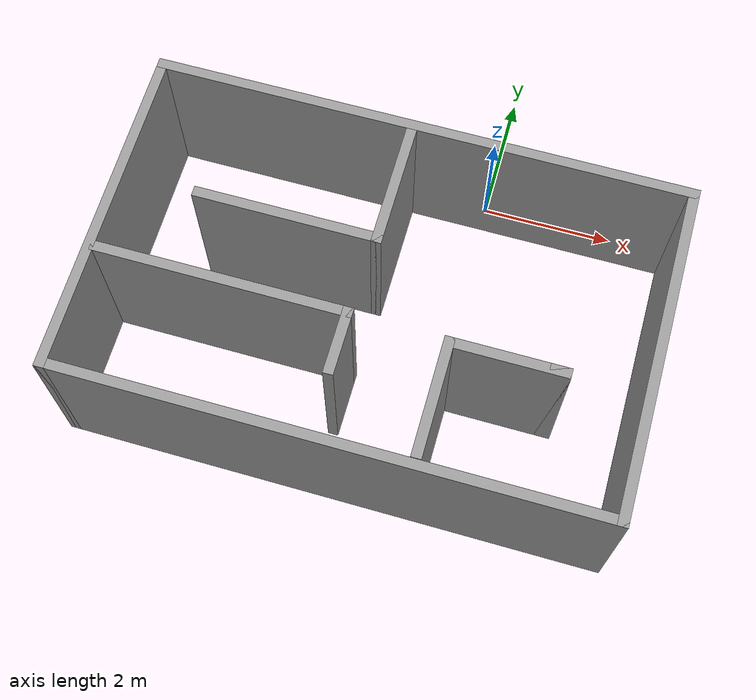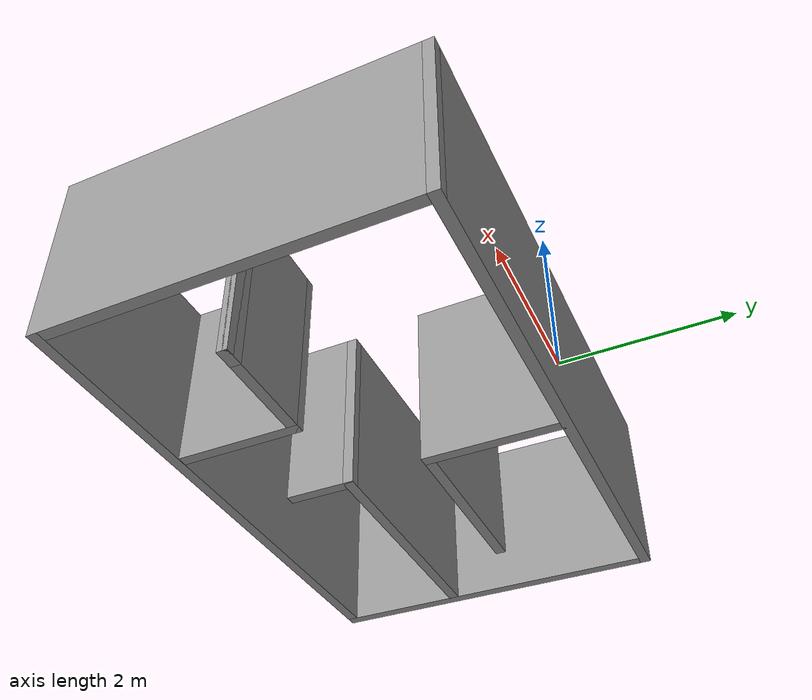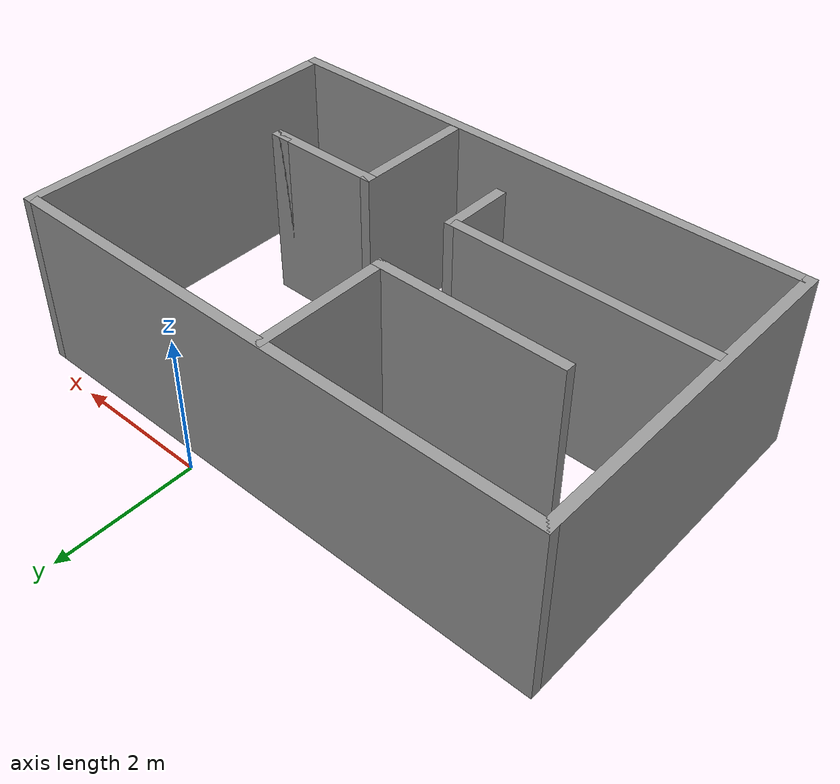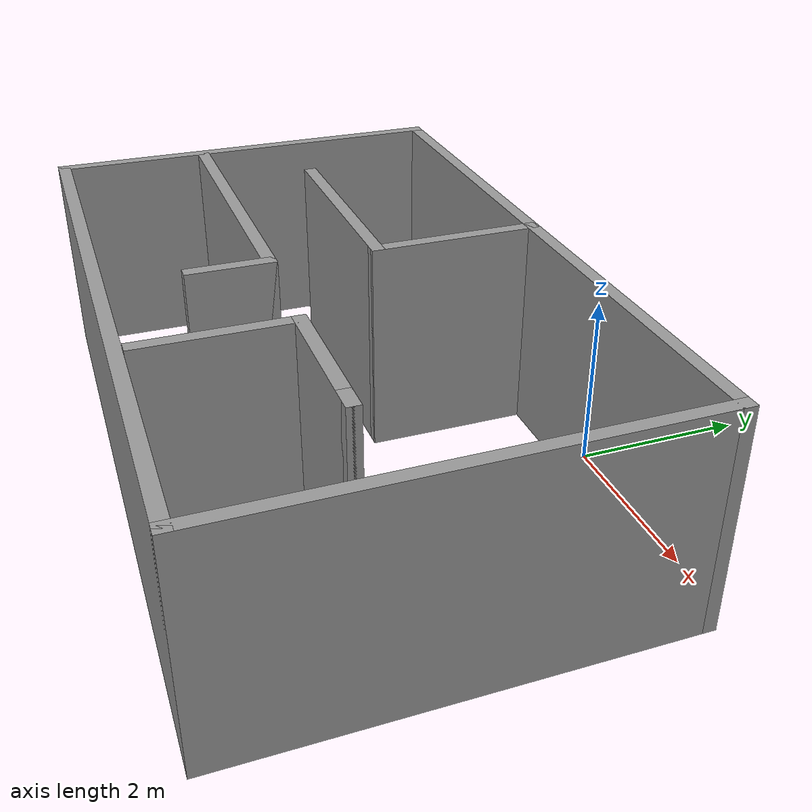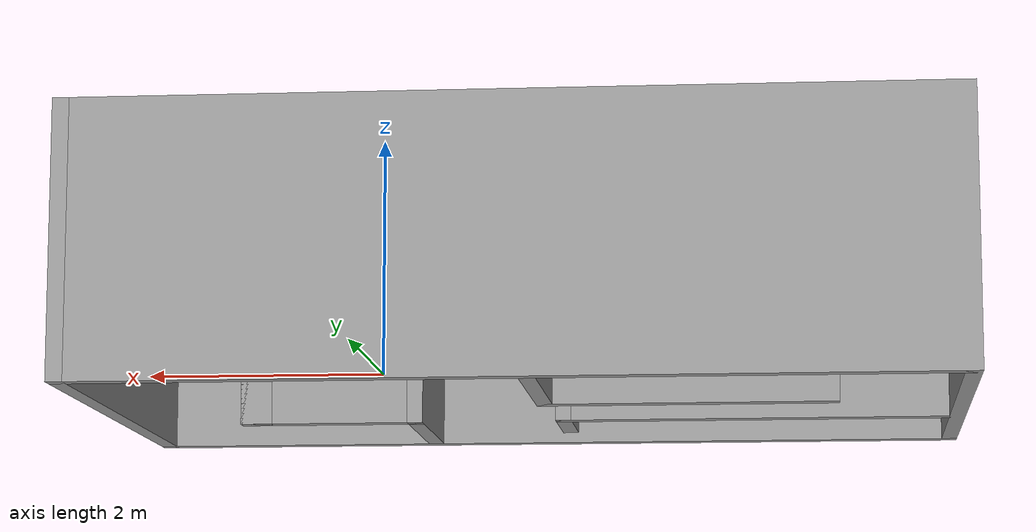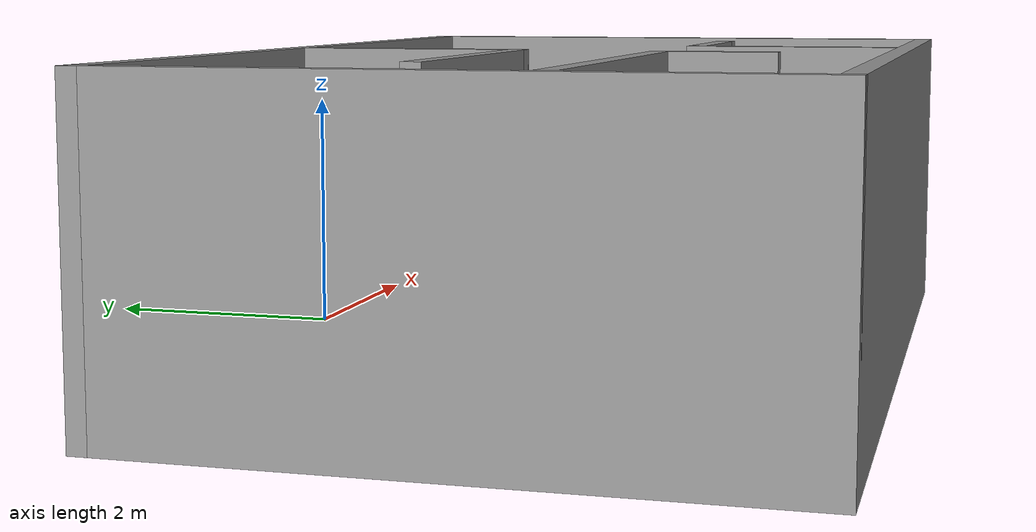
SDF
<?xml version='1.0'?>
<sdf version='1.7'>
  <model name='room'>
    <pose>-1.035 -2.5975 0 0 -0 0</pose>
    <link name='Wall_1'>
      <collision name='Wall_1_Collision'>
        <geometry>
          <box>
            <size>5 0.15 2.5</size>
          </box>
        </geometry>
        <pose>0 0 1.25 0 -0 0</pose>
      </collision>
      <visual name='Wall_1_Visual'>
        <pose>0 0 1.25 0 -0 0</pose>
        <geometry>
          <box>
            <size>5 0.15 2.5</size>
          </box>
        </geometry>
        <material>
          <script>
            <uri>file://media/materials/scripts/gazebo.material</uri>
            <name>Gazebo/Grey</name>
          </script>
          <ambient>1 1 1 1</ambient>
        </material>
        <meta>
          <layer>0</layer>
        </meta>
      </visual>
      <pose>-3.925 -0.0975 0 0 -0 -1.5708</pose>
    </link>
    <link name='Wall_10'>
      <collision name='Wall_10_Collision'>
        <geometry>
          <box>
            <size>3.75 0.15 2.5</size>
          </box>
        </geometry>
        <pose>0 0 1.25 0 -0 0</pose>
      </collision>
      <visual name='Wall_10_Visual'>
        <pose>0 0 1.25 0 -0 0</pose>
        <geometry>
          <box>
            <size>3.75 0.15 2.5</size>
          </box>
        </geometry>
        <material>
          <script>
            <uri>file://media/materials/scripts/gazebo.material</uri>
            <name>Gazebo/Grey</name>
          </script>
          <ambient>1 1 1 1</ambient>
        </material>
        <meta>
          <layer>0</layer>
        </meta>
      </visual>
      <pose>-2.02476 -0.722095 0 0 -0 0</pose>
    </link>
    <link name='Wall_11'>
      <collision name='Wall_11_Collision'>
        <geometry>
          <box>
            <size>1 0.15 2.5</size>
          </box>
        </geometry>
        <pose>0 0 1.25 0 -0 0</pose>
      </collision>
      <visual name='Wall_11_Visual'>
        <pose>0 0 1.25 0 -0 0</pose>
        <geometry>
          <box>
            <size>1 0.15 2.5</size>
          </box>
        </geometry>
        <material>
          <script>
            <uri>file://media/materials/scripts/gazebo.material</uri>
            <name>Gazebo/Grey</name>
          </script>
          <ambient>1 1 1 1</ambient>
        </material>
        <meta>
          <layer>0</layer>
        </meta>
      </visual>
      <pose>-0.224762 -1.14709 0 0 -0 -1.5708</pose>
    </link>
    <link name='Wall_13'>
      <collision name='Wall_13_Collision'>
        <geometry>
          <box>
            <size>1.75 0.15 2.5</size>
          </box>
        </geometry>
        <pose>0 0 1.25 0 -0 0</pose>
      </collision>
      <visual name='Wall_13_Visual'>
        <pose>0 0 1.25 0 -0 0</pose>
        <geometry>
          <box>
            <size>1.75 0.15 2.5</size>
          </box>
        </geometry>
        <material>
          <script>
            <uri>file://media/materials/scripts/gazebo.material</uri>
            <name>Gazebo/Grey</name>
          </script>
          <ambient>1 1 1 1</ambient>
        </material>
        <meta>
          <layer>0</layer>
        </meta>
      </visual>
      <pose>1.19489 -1.56616 0 0 -0 1.5708</pose>
    </link>
    <link name='Wall_14'>
      <collision name='Wall_14_Collision'>
        <geometry>
          <box>
            <size>1.75 0.15 2.5</size>
          </box>
        </geometry>
        <pose>0 0 1.25 0 -0 0</pose>
      </collision>
      <visual name='Wall_14_Visual'>
        <pose>0 0 1.25 0 -0 0</pose>
        <geometry>
          <box>
            <size>1.75 0.15 2.5</size>
          </box>
        </geometry>
        <material>
          <script>
            <uri>file://media/materials/scripts/gazebo.material</uri>
            <name>Gazebo/Grey</name>
          </script>
          <ambient>1 1 1 1</ambient>
        </material>
        <meta>
          <layer>0</layer>
        </meta>
      </visual>
      <pose>1.99489 -0.766161 0 0 -0 0</pose>
    </link>
    <link name='Wall_15'>
      <collision name='Wall_15_Collision'>
        <geometry>
          <box>
            <size>0.3 0.15 2.5</size>
          </box>
        </geometry>
        <pose>0 0 1.25 0 -0 0</pose>
      </collision>
      <visual name='Wall_15_Visual'>
        <pose>0 0 1.25 0 -0 0</pose>
        <geometry>
          <box>
            <size>0.3 0.15 2.5</size>
          </box>
        </geometry>
        <material>
          <script>
            <uri>file://media/materials/scripts/gazebo.material</uri>
            <name>Gazebo/Grey</name>
          </script>
          <ambient>1 1 1 1</ambient>
        </material>
        <meta>
          <layer>0</layer>
        </meta>
      </visual>
      <pose>2.71989 -0.766161 0 0 -0 3.14159</pose>
    </link>
    <link name='Wall_2'>
      <collision name='Wall_2_Collision'>
        <geometry>
          <box>
            <size>8 0.15 2.5</size>
          </box>
        </geometry>
        <pose>0 0 1.25 0 -0 0</pose>
      </collision>
      <visual name='Wall_2_Visual'>
        <pose>0 0 1.25 0 -0 0</pose>
        <geometry>
          <box>
            <size>8 0.15 2.5</size>
          </box>
        </geometry>
        <material>
          <script>
            <uri>file://media/materials/scripts/gazebo.material</uri>
            <name>Gazebo/Grey</name>
          </script>
          <ambient>1 1 1 1</ambient>
        </material>
        <meta>
          <layer>0</layer>
        </meta>
      </visual>
      <pose>0 -2.5225 0 0 -0 0</pose>
    </link>
    <link name='Wall_3'>
      <collision name='Wall_3_Collision'>
        <geometry>
          <box>
            <size>5 0.15 2.5</size>
          </box>
        </geometry>
        <pose>0 0 1.25 0 -0 0</pose>
      </collision>
      <visual name='Wall_3_Visual'>
        <pose>0 0 1.25 0 -0 0</pose>
        <geometry>
          <box>
            <size>5 0.15 2.5</size>
          </box>
        </geometry>
        <material>
          <script>
            <uri>file://media/materials/scripts/gazebo.material</uri>
            <name>Gazebo/Grey</name>
          </script>
          <ambient>1 1 1 1</ambient>
        </material>
        <meta>
          <layer>0</layer>
        </meta>
      </visual>
      <pose>3.925 -0.0975 0 0 -0 1.5708</pose>
    </link>
    <link name='Wall_4'>
      <collision name='Wall_4_Collision'>
        <geometry>
          <box>
            <size>8 0.15 2.5</size>
          </box>
        </geometry>
        <pose>0 0 1.25 0 -0 0</pose>
      </collision>
      <visual name='Wall_4_Visual'>
        <pose>0 0 1.25 0 -0 0</pose>
        <geometry>
          <box>
            <size>8 0.15 2.5</size>
          </box>
        </geometry>
        <material>
          <script>
            <uri>file://media/materials/scripts/gazebo.material</uri>
            <name>Gazebo/Grey</name>
          </script>
          <ambient>1 1 1 1</ambient>
        </material>
        <meta>
          <layer>0</layer>
        </meta>
      </visual>
      <pose>0 2.3275 0 0 -0 3.14159</pose>
    </link>
    <link name='Wall_6'>
      <collision name='Wall_6_Collision'>
        <geometry>
          <box>
            <size>2.75 0.15 2.5</size>
          </box>
        </geometry>
        <pose>0 0 1.25 0 -0 0</pose>
      </collision>
      <visual name='Wall_6_Visual'>
        <pose>0 0 1.25 0 -0 0</pose>
        <geometry>
          <box>
            <size>2.75 0.15 2.5</size>
          </box>
        </geometry>
        <material>
          <script>
            <uri>file://media/materials/scripts/gazebo.material</uri>
            <name>Gazebo/Grey</name>
          </script>
          <ambient>1 1 1 1</ambient>
        </material>
        <meta>
          <layer>0</layer>
        </meta>
      </visual>
      <pose>-1.445 0.4575 0 0 -0 0</pose>
    </link>
    <link name='Wall_8'>
      <collision name='Wall_8_Collision'>
        <geometry>
          <box>
            <size>2 0.15 2.5</size>
          </box>
        </geometry>
        <pose>0 0 1.25 0 -0 0</pose>
      </collision>
      <visual name='Wall_8_Visual'>
        <pose>0 0 1.25 0 -0 0</pose>
        <geometry>
          <box>
            <size>2 0.15 2.5</size>
          </box>
        </geometry>
        <material>
          <script>
            <uri>file://media/materials/scripts/gazebo.material</uri>
            <name>Gazebo/Grey</name>
          </script>
          <ambient>1 1 1 1</ambient>
        </material>
        <meta>
          <layer>0</layer>
        </meta>
      </visual>
      <pose>-0.145 1.3825 0 0 -0 1.5708</pose>
    </link>
    <static>1</static>
  </model>
</sdf>
